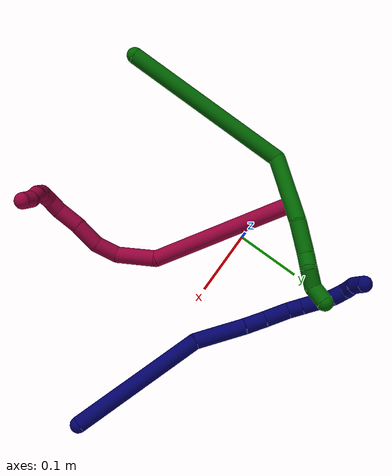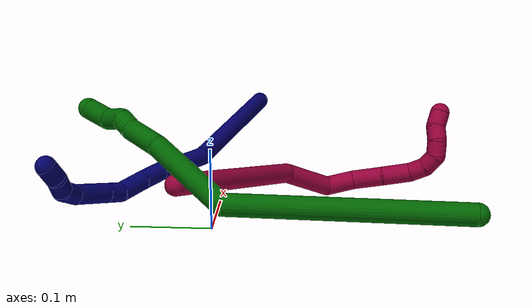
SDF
<sdf version="1.7">
 <world name="default">
  <model name="photoneo_s_sensor">
   <static>1</static>
   <pose>0 0 2 1.57079 1.57079 3.14159</pose>
   <link name="link">
    <inertial><mass>0.1</mass></inertial>
    <sensor name="sensor" type="depth">
     <update_rate>30</update_rate>
     <camera>
      <horizontal_fov>1.22</horizontal_fov>
      <image><width>1920</width><height>1200</height><format>B8G8R8</format></image>
      <clip><near>0.1</near><far>4</far></clip>
      <depth_camera><output>points</output></depth_camera>
     </camera>
     <plugin name="camera_plugin" filename="libgazebo_ros_depth_camera.so">
      <baseline>0.2</baseline>
      <alwaysOn>1</alwaysOn>
      <updateRate>0.0</updateRate>
      <cameraName>camera_ir</cameraName>
      <imageTopicName>/camera/color/image_raw</imageTopicName>
      <cameraInfoTopicName>/camera/color/camera_info</cameraInfoTopicName>
      <depthImageTopicName>/camera/depth/image_raw</depthImageTopicName>
      <depthImageCameraInfoTopicName>/camera/depth/camera_info</depthImageCameraInfoTopicName>
      <pointCloudTopicName>/camera/depth/points</pointCloudTopicName>
      <frameName>fr_optical</frameName>
      <pointCloudCutoff>0.1</pointCloudCutoff>
      <pointCloudCutoffMax>2.0</pointCloudCutoffMax>
      <distortionK1>0</distortionK1>
      <distortionK2>0</distortionK2>
      <distortionK3>0</distortionK3>
      <distortionT1>0</distortionT1>
      <distortionT2>0</distortionT2>
      <CxPrime>0</CxPrime>
      <Cx>0</Cx>
      <Cy>0</Cy>
      <focalLength>0</focalLength>
      <hackBaseline>0</hackBaseline>
     </plugin>
    </sensor>
   </link>
  </model>
  <model name="bin">
   <static>1</static>
   <link name="bottom">
    <collision name="collision-bottom">
     <pose>0 0 -0.01 0 -0 0</pose>
     <geometry><box><size>0.8 0.6 0.02</size></box></geometry>
     <surface>
      <friction><ode><mu>100</mu><mu2>100</mu2></ode></friction>
      <contact><collide_bitmask>65535</collide_bitmask></contact>
     </surface>
    </collision>
   </link>
   <link name="west_wall">
    <collision name="collision-west_wall">
     <pose>-0.41 0 0.1 0 -0 0</pose>
     <geometry><box><size>0.02 0.6 0.2</size></box></geometry>
     <surface>
      <friction><ode><mu>100</mu><mu2>100</mu2></ode></friction>
      <contact><collide_bitmask>65535</collide_bitmask></contact>
     </surface>
    </collision>
   </link>
   <link name="east_wall">
    <collision name="collision-east_wall">
     <pose>0.41 0 0.1 0 -0 0</pose>
     <geometry><box><size>0.02 0.6 0.2</size></box></geometry>
     <surface>
      <friction><ode><mu>100</mu><mu2>100</mu2></ode></friction>
      <contact><collide_bitmask>65535</collide_bitmask></contact>
     </surface>
    </collision>
   </link>
   <link name="south_wall">
    <collision name="collision-south_wall">
     <pose>0 -0.31 0.1 0 -0 0</pose>
     <geometry><box><size>0.8 0.02 0.2</size></box></geometry>
     <surface>
      <friction><ode><mu>100</mu><mu2>100</mu2></ode></friction>
      <contact><collide_bitmask>65535</collide_bitmask></contact>
     </surface>
    </collision>
   </link>
   <link name="north_wall">
    <collision name="collision-north_wall">
     <pose>0 0.31 0.1 0 -0 0</pose>
     <geometry><box><size>0.8 0.02 0.2</size></box></geometry>
     <surface>
      <friction><ode><mu>100</mu><mu2>100</mu2></ode></friction>
      <contact><collide_bitmask>65535</collide_bitmask></contact>
     </surface>
    </collision>
   </link>
  </model>
  <model name="6">
   <static>0</static>
   <link name="6">
    <collision name="collision-cylinder-e_1_1_4">
     <pose>-0.0597 0.064491 -0.097639 -2.55787 -0.471768 1.34951</pose>
     <geometry><cylinder><radius>0.0125</radius><length>0.262728</length></cylinder></geometry>
     <surface>
      <friction><ode><mu>1.16</mu><mu2>1.16</mu2><slip1>0</slip1><slip2>0</slip2></ode></friction>
      <contact><ode><kp>1e+06</kp><kd>1</kd><max_vel>0</max_vel><min_depth>0.001</min_depth></ode></contact>
     </surface>
    </collision>
    <visual name="visual-cylinder-e_1_1_4">
     <pose>-0.0597 0.064491 -0.097639 -2.55787 -0.471768 1.34951</pose>
     <geometry><cylinder><radius>0.0125</radius><length>0.262728</length></cylinder></geometry>
     <material><ambient>0 0.392157 0.003922 1</ambient></material>
    </visual>
    <collision name="collision-cylinder-e_2_4_5">
     <pose>-0.105793 0.168845 -0.230328 -2.29201 0.250935 -0.543875</pose>
     <geometry><cylinder><radius>0.0125</radius><length>0.109594</length></cylinder></geometry>
     <surface>
      <friction><ode><mu>1.16</mu><mu2>1.16</mu2><slip1>0</slip1><slip2>0</slip2></ode></friction>
      <contact><ode><kp>1e+06</kp><kd>1</kd><max_vel>0</max_vel><min_depth>0.001</min_depth></ode></contact>
     </surface>
    </collision>
    <visual name="visual-cylinder-e_2_4_5">
     <pose>-0.105793 0.168845 -0.230328 -2.29201 0.250935 -0.543875</pose>
     <geometry><cylinder><radius>0.0125</radius><length>0.109594</length></cylinder></geometry>
     <material><ambient>0 0.392157 0.003922 1</ambient></material>
    </visual>
    <collision name="collision-cylinder-e_3_5_6">
     <pose>-0.085436 0.222612 -0.284864 -2.52188 0.27488 -0.815567</pose>
     <geometry><cylinder><radius>0.0125</radius><length>0.049744</length></cylinder></geometry>
     <surface>
      <friction><ode><mu>1.16</mu><mu2>1.16</mu2><slip1>0</slip1><slip2>0</slip2></ode></friction>
      <contact><ode><kp>1e+06</kp><kd>1</kd><max_vel>0</max_vel><min_depth>0.001</min_depth></ode></contact>
     </surface>
    </collision>
    <visual name="visual-cylinder-e_3_5_6">
     <pose>-0.085436 0.222612 -0.284864 -2.52188 0.27488 -0.815567</pose>
     <geometry><cylinder><radius>0.0125</radius><length>0.049744</length></cylinder></geometry>
     <material><ambient>0 0.392157 0.003922 1</ambient></material>
    </visual>
    <collision name="collision-cylinder-e_4_6_7">
     <pose>-0.07495 0.243936 -0.310957 -2.29821 0.35957 -0.769862</pose>
     <geometry><cylinder><radius>0.0125</radius><length>0.021228</length></cylinder></geometry>
     <surface>
      <friction><ode><mu>1.16</mu><mu2>1.16</mu2><slip1>0</slip1><slip2>0</slip2></ode></friction>
      <contact><ode><kp>1e+06</kp><kd>1</kd><max_vel>0</max_vel><min_depth>0.001</min_depth></ode></contact>
     </surface>
    </collision>
    <visual name="visual-cylinder-e_4_6_7">
     <pose>-0.07495 0.243936 -0.310957 -2.29821 0.35957 -0.769862</pose>
     <geometry><cylinder><radius>0.0125</radius><length>0.021228</length></cylinder></geometry>
     <material><ambient>0 0.392157 0.003922 1</ambient></material>
    </visual>
    <collision name="collision-cylinder-e_5_7_8">
     <pose>-0.068762 0.254923 -0.331172 -2.88524 0.17262 -1.18249</pose>
     <geometry><cylinder><radius>0.0125</radius><length>0.028562</length></cylinder></geometry>
     <surface>
      <friction><ode><mu>1.16</mu><mu2>1.16</mu2><slip1>0</slip1><slip2>0</slip2></ode></friction>
      <contact><ode><kp>1e+06</kp><kd>1</kd><max_vel>0</max_vel><min_depth>0.001</min_depth></ode></contact>
     </surface>
    </collision>
    <visual name="visual-cylinder-e_5_7_8">
     <pose>-0.068762 0.254923 -0.331172 -2.88524 0.17262 -1.18249</pose>
     <geometry><cylinder><radius>0.0125</radius><length>0.028562</length></cylinder></geometry>
     <material><ambient>0 0.392157 0.003922 1</ambient></material>
    </visual>
    <collision name="collision-cylinder-e_6_8_2">
     <pose>-0.067512 0.269329 -0.353675 -2.25798 -0.085592 0.180579</pose>
     <geometry><cylinder><radius>0.0125</radius><length>0.028144</length></cylinder></geometry>
     <surface>
      <friction><ode><mu>1.16</mu><mu2>1.16</mu2><slip1>0</slip1><slip2>0</slip2></ode></friction>
      <contact><ode><kp>1e+06</kp><kd>1</kd><max_vel>0</max_vel><min_depth>0.001</min_depth></ode></contact>
     </surface>
    </collision>
    <visual name="visual-cylinder-e_6_8_2">
     <pose>-0.067512 0.269329 -0.353675 -2.25798 -0.085592 0.180579</pose>
     <geometry><cylinder><radius>0.0125</radius><length>0.028144</length></cylinder></geometry>
     <material><ambient>0 0.392157 0.003922 1</ambient></material>
    </visual>
    <collision name="collision-sphere-2">
     <pose>-0.068715 0.280167 -0.362569 0 -0 0</pose>
     <geometry><sphere><radius>0.0125</radius></sphere></geometry>
     <surface>
      <friction><ode><mu>1.16</mu><mu2>1.16</mu2><slip1>0</slip1><slip2>0</slip2></ode></friction>
      <contact><ode><kp>1e+06</kp><kd>1</kd><max_vel>0</max_vel><min_depth>0.001</min_depth></ode></contact>
     </surface>
    </collision>
    <visual name="visual-sphere-2">
     <pose>-0.068715 0.280167 -0.362569 0 -0 0</pose>
     <geometry><sphere><radius>0.0125</radius></sphere></geometry>
     <material><ambient>0 0.392157 0.003922 1</ambient></material>
    </visual>
    <collision name="collision-sphere-4">
     <pose>-0.1194 0.128981 -0.195279 0 -0 0</pose>
     <geometry><sphere><radius>0.0125</radius></sphere></geometry>
     <surface>
      <friction><ode><mu>1.16</mu><mu2>1.16</mu2><slip1>0</slip1><slip2>0</slip2></ode></friction>
      <contact><ode><kp>1e+06</kp><kd>1</kd><max_vel>0</max_vel><min_depth>0.001</min_depth></ode></contact>
     </surface>
    </collision>
    <visual name="visual-sphere-4">
     <pose>-0.1194 0.128981 -0.195279 0 -0 0</pose>
     <geometry><sphere><radius>0.0125</radius></sphere></geometry>
     <material><ambient>0 0.392157 0.003922 1</ambient></material>
    </visual>
    <collision name="collision-sphere-1">
     <geometry><sphere><radius>0.0125</radius></sphere></geometry>
     <surface>
      <friction><ode><mu>1.16</mu><mu2>1.16</mu2><slip1>0</slip1><slip2>0</slip2></ode></friction>
      <contact><ode><kp>1e+06</kp><kd>1</kd><max_vel>0</max_vel><min_depth>0.001</min_depth></ode></contact>
     </surface>
    </collision>
    <visual name="visual-sphere-1">
     <geometry><sphere><radius>0.0125</radius></sphere></geometry>
     <material><ambient>0 0.392157 0.003922 1</ambient></material>
    </visual>
    <collision name="collision-sphere-8">
     <pose>-0.066309 0.25849 -0.344781 0 -0 0</pose>
     <geometry><sphere><radius>0.0125</radius></sphere></geometry>
     <surface>
      <friction><ode><mu>1.16</mu><mu2>1.16</mu2><slip1>0</slip1><slip2>0</slip2></ode></friction>
      <contact><ode><kp>1e+06</kp><kd>1</kd><max_vel>0</max_vel><min_depth>0.001</min_depth></ode></contact>
     </surface>
    </collision>
    <visual name="visual-sphere-8">
     <pose>-0.066309 0.25849 -0.344781 0 -0 0</pose>
     <geometry><sphere><radius>0.0125</radius></sphere></geometry>
     <material><ambient>0 0.392157 0.003922 1</ambient></material>
    </visual>
    <collision name="collision-sphere-5">
     <pose>-0.092187 0.208709 -0.265377 0 -0 0</pose>
     <geometry><sphere><radius>0.0125</radius></sphere></geometry>
     <surface>
      <friction><ode><mu>1.16</mu><mu2>1.16</mu2><slip1>0</slip1><slip2>0</slip2></ode></friction>
      <contact><ode><kp>1e+06</kp><kd>1</kd><max_vel>0</max_vel><min_depth>0.001</min_depth></ode></contact>
     </surface>
    </collision>
    <visual name="visual-sphere-5">
     <pose>-0.092187 0.208709 -0.265377 0 -0 0</pose>
     <geometry><sphere><radius>0.0125</radius></sphere></geometry>
     <material><ambient>0 0.392157 0.003922 1</ambient></material>
    </visual>
    <collision name="collision-sphere-6">
     <pose>-0.078685 0.236515 -0.304351 0 -0 0</pose>
     <geometry><sphere><radius>0.0125</radius></sphere></geometry>
     <surface>
      <friction><ode><mu>1.16</mu><mu2>1.16</mu2><slip1>0</slip1><slip2>0</slip2></ode></friction>
      <contact><ode><kp>1e+06</kp><kd>1</kd><max_vel>0</max_vel><min_depth>0.001</min_depth></ode></contact>
     </surface>
    </collision>
    <visual name="visual-sphere-6">
     <pose>-0.078685 0.236515 -0.304351 0 -0 0</pose>
     <geometry><sphere><radius>0.0125</radius></sphere></geometry>
     <material><ambient>0 0.392157 0.003922 1</ambient></material>
    </visual>
    <collision name="collision-sphere-7">
     <pose>-0.071215 0.251356 -0.317563 0 -0 0</pose>
     <geometry><sphere><radius>0.0125</radius></sphere></geometry>
     <surface>
      <friction><ode><mu>1.16</mu><mu2>1.16</mu2><slip1>0</slip1><slip2>0</slip2></ode></friction>
      <contact><ode><kp>1e+06</kp><kd>1</kd><max_vel>0</max_vel><min_depth>0.001</min_depth></ode></contact>
     </surface>
    </collision>
    <visual name="visual-sphere-7">
     <pose>-0.071215 0.251356 -0.317563 0 -0 0</pose>
     <geometry><sphere><radius>0.0125</radius></sphere></geometry>
     <material><ambient>0 0.392157 0.003922 1</ambient></material>
    </visual>
    <inertial>
     <pose>-0.073968 0.133122 -0.182158 0 -0 0</pose>
     <mass>0.5</mass>
     <inertia>
      <ixx>0.001653</ixx>
      <ixy>0</ixy>
      <ixz>0</ixz>
      <iyy>0.001306</iyy>
      <iyz>0</iyz>
      <izz>-0.00021</izz>
     </inertia>
    </inertial>
   </link>
   <pose>-0.122059 -0.288355 0.072302 1.09955 -0.188151 -0.494706</pose>
  </model>
  <model name="7">
   <static>0</static>
   <link name="7">
    <collision name="collision-cylinder-e_1_1_4">
     <pose>-0.058438 -0.004374 -0.088133 3.09201 -0.58494 -2.97725</pose>
     <geometry><cylinder><radius>0.0125</radius><length>0.211675</length></cylinder></geometry>
     <surface>
      <friction><ode><mu>1.16</mu><mu2>1.16</mu2><slip1>0</slip1><slip2>0</slip2></ode></friction>
      <contact><ode><kp>1e+06</kp><kd>1</kd><max_vel>0</max_vel><min_depth>0.001</min_depth></ode></contact>
     </surface>
    </collision>
    <visual name="visual-cylinder-e_1_1_4">
     <pose>-0.058438 -0.004374 -0.088133 3.09201 -0.58494 -2.97725</pose>
     <geometry><cylinder><radius>0.0125</radius><length>0.211675</length></cylinder></geometry>
     <material><ambient>0.003922 0 0.403922 1</ambient></material>
    </visual>
    <collision name="collision-cylinder-e_2_4_5">
     <pose>-0.133554 0.002266 -0.210212 -2.82786 -0.437178 1.9041</pose>
     <geometry><cylinder><radius>0.0125</radius><length>0.078785</length></cylinder></geometry>
     <surface>
      <friction><ode><mu>1.16</mu><mu2>1.16</mu2><slip1>0</slip1><slip2>0</slip2></ode></friction>
      <contact><ode><kp>1e+06</kp><kd>1</kd><max_vel>0</max_vel><min_depth>0.001</min_depth></ode></contact>
     </surface>
    </collision>
    <visual name="visual-cylinder-e_2_4_5">
     <pose>-0.133554 0.002266 -0.210212 -2.82786 -0.437178 1.9041</pose>
     <geometry><cylinder><radius>0.0125</radius><length>0.078785</length></cylinder></geometry>
     <material><ambient>0.003922 0 0.403922 1</ambient></material>
    </visual>
    <collision name="collision-cylinder-e_3_5_6">
     <pose>-0.156795 0.016355 -0.258665 -2.93275 -0.416604 2.22097</pose>
     <geometry><cylinder><radius>0.0125</radius><length>0.032432</length></cylinder></geometry>
     <surface>
      <friction><ode><mu>1.16</mu><mu2>1.16</mu2><slip1>0</slip1><slip2>0</slip2></ode></friction>
      <contact><ode><kp>1e+06</kp><kd>1</kd><max_vel>0</max_vel><min_depth>0.001</min_depth></ode></contact>
     </surface>
    </collision>
    <visual name="visual-cylinder-e_3_5_6">
     <pose>-0.156795 0.016355 -0.258665 -2.93275 -0.416604 2.22097</pose>
     <geometry><cylinder><radius>0.0125</radius><length>0.032432</length></cylinder></geometry>
     <material><ambient>0.003922 0 0.403922 1</ambient></material>
    </visual>
    <collision name="collision-cylinder-e_4_6_7">
     <pose>-0.171326 0.022601 -0.290727 -2.96285 -0.420096 2.3458</pose>
     <geometry><cylinder><radius>0.0125</radius><length>0.039078</length></cylinder></geometry>
     <surface>
      <friction><ode><mu>1.16</mu><mu2>1.16</mu2><slip1>0</slip1><slip2>0</slip2></ode></friction>
      <contact><ode><kp>1e+06</kp><kd>1</kd><max_vel>0</max_vel><min_depth>0.001</min_depth></ode></contact>
     </surface>
    </collision>
    <visual name="visual-cylinder-e_4_6_7">
     <pose>-0.171326 0.022601 -0.290727 -2.96285 -0.420096 2.3458</pose>
     <geometry><cylinder><radius>0.0125</radius><length>0.039078</length></cylinder></geometry>
     <material><ambient>0.003922 0 0.403922 1</ambient></material>
    </visual>
    <collision name="collision-cylinder-e_5_7_8">
     <pose>-0.185656 0.030856 -0.316444 -2.58449 -0.584568 1.62161</pose>
     <geometry><cylinder><radius>0.0125</radius><length>0.023057</length></cylinder></geometry>
     <surface>
      <friction><ode><mu>1.16</mu><mu2>1.16</mu2><slip1>0</slip1><slip2>0</slip2></ode></friction>
      <contact><ode><kp>1e+06</kp><kd>1</kd><max_vel>0</max_vel><min_depth>0.001</min_depth></ode></contact>
     </surface>
    </collision>
    <visual name="visual-cylinder-e_5_7_8">
     <pose>-0.185656 0.030856 -0.316444 -2.58449 -0.584568 1.62161</pose>
     <geometry><cylinder><radius>0.0125</radius><length>0.023057</length></cylinder></geometry>
     <material><ambient>0.003922 0 0.403922 1</ambient></material>
    </visual>
    <collision name="collision-cylinder-e_6_8_9">
     <pose>-0.205193 0.046515 -0.341591 -2.58476 -0.582255 1.61793</pose>
     <geometry><cylinder><radius>0.0125</radius><length>0.047916</length></cylinder></geometry>
     <surface>
      <friction><ode><mu>1.16</mu><mu2>1.16</mu2><slip1>0</slip1><slip2>0</slip2></ode></friction>
      <contact><ode><kp>1e+06</kp><kd>1</kd><max_vel>0</max_vel><min_depth>0.001</min_depth></ode></contact>
     </surface>
    </collision>
    <visual name="visual-cylinder-e_6_8_9">
     <pose>-0.205193 0.046515 -0.341591 -2.58476 -0.582255 1.61793</pose>
     <geometry><cylinder><radius>0.0125</radius><length>0.047916</length></cylinder></geometry>
     <material><ambient>0.003922 0 0.403922 1</ambient></material>
    </visual>
    <collision name="collision-cylinder-e_7_9_10">
     <pose>-0.227523 0.062252 -0.364174 -2.39651 -0.877125 1.75228</pose>
     <geometry><cylinder><radius>0.0125</radius><length>0.023813</length></cylinder></geometry>
     <surface>
      <friction><ode><mu>1.16</mu><mu2>1.16</mu2><slip1>0</slip1><slip2>0</slip2></ode></friction>
      <contact><ode><kp>1e+06</kp><kd>1</kd><max_vel>0</max_vel><min_depth>0.001</min_depth></ode></contact>
     </surface>
    </collision>
    <visual name="visual-cylinder-e_7_9_10">
     <pose>-0.227523 0.062252 -0.364174 -2.39651 -0.877125 1.75228</pose>
     <geometry><cylinder><radius>0.0125</radius><length>0.023813</length></cylinder></geometry>
     <material><ambient>0.003922 0 0.403922 1</ambient></material>
    </visual>
    <collision name="collision-cylinder-e_8_10_11">
     <pose>-0.245288 0.07314 -0.368855 -1.41241 -0.978086 0.852196</pose>
     <geometry><cylinder><radius>0.0125</radius><length>0.020762</length></cylinder></geometry>
     <surface>
      <friction><ode><mu>1.16</mu><mu2>1.16</mu2><slip1>0</slip1><slip2>0</slip2></ode></friction>
      <contact><ode><kp>1e+06</kp><kd>1</kd><max_vel>0</max_vel><min_depth>0.001</min_depth></ode></contact>
     </surface>
    </collision>
    <visual name="visual-cylinder-e_8_10_11">
     <pose>-0.245288 0.07314 -0.368855 -1.41241 -0.978086 0.852196</pose>
     <geometry><cylinder><radius>0.0125</radius><length>0.020762</length></cylinder></geometry>
     <material><ambient>0.003922 0 0.403922 1</ambient></material>
    </visual>
    <collision name="collision-cylinder-e_9_11_2">
     <pose>-0.26088 0.087669 -0.368272 -1.60839 -0.670185 0.693887</pose>
     <geometry><cylinder><radius>0.0125</radius><length>0.022481</length></cylinder></geometry>
     <surface>
      <friction><ode><mu>1.16</mu><mu2>1.16</mu2><slip1>0</slip1><slip2>0</slip2></ode></friction>
      <contact><ode><kp>1e+06</kp><kd>1</kd><max_vel>0</max_vel><min_depth>0.001</min_depth></ode></contact>
     </surface>
    </collision>
    <visual name="visual-cylinder-e_9_11_2">
     <pose>-0.26088 0.087669 -0.368272 -1.60839 -0.670185 0.693887</pose>
     <geometry><cylinder><radius>0.0125</radius><length>0.022481</length></cylinder></geometry>
     <material><ambient>0.003922 0 0.403922 1</ambient></material>
    </visual>
    <collision name="collision-sphere-2">
     <pose>-0.267862 0.096472 -0.368603 0 -0 0</pose>
     <geometry><sphere><radius>0.0125</radius></sphere></geometry>
     <surface>
      <friction><ode><mu>1.16</mu><mu2>1.16</mu2><slip1>0</slip1><slip2>0</slip2></ode></friction>
      <contact><ode><kp>1e+06</kp><kd>1</kd><max_vel>0</max_vel><min_depth>0.001</min_depth></ode></contact>
     </surface>
    </collision>
    <visual name="visual-sphere-2">
     <pose>-0.267862 0.096472 -0.368603 0 -0 0</pose>
     <geometry><sphere><radius>0.0125</radius></sphere></geometry>
     <material><ambient>0.003922 0 0.403922 1</ambient></material>
    </visual>
    <collision name="collision-sphere-11">
     <pose>-0.253898 0.078866 -0.367941 0 -0 0</pose>
     <geometry><sphere><radius>0.0125</radius></sphere></geometry>
     <surface>
      <friction><ode><mu>1.16</mu><mu2>1.16</mu2><slip1>0</slip1><slip2>0</slip2></ode></friction>
      <contact><ode><kp>1e+06</kp><kd>1</kd><max_vel>0</max_vel><min_depth>0.001</min_depth></ode></contact>
     </surface>
    </collision>
    <visual name="visual-sphere-11">
     <pose>-0.253898 0.078866 -0.367941 0 -0 0</pose>
     <geometry><sphere><radius>0.0125</radius></sphere></geometry>
     <material><ambient>0.003922 0 0.403922 1</ambient></material>
    </visual>
    <collision name="collision-sphere-10">
     <pose>-0.236678 0.067413 -0.36977 0 -0 0</pose>
     <geometry><sphere><radius>0.0125</radius></sphere></geometry>
     <surface>
      <friction><ode><mu>1.16</mu><mu2>1.16</mu2><slip1>0</slip1><slip2>0</slip2></ode></friction>
      <contact><ode><kp>1e+06</kp><kd>1</kd><max_vel>0</max_vel><min_depth>0.001</min_depth></ode></contact>
     </surface>
    </collision>
    <visual name="visual-sphere-10">
     <pose>-0.236678 0.067413 -0.36977 0 -0 0</pose>
     <geometry><sphere><radius>0.0125</radius></sphere></geometry>
     <material><ambient>0.003922 0 0.403922 1</ambient></material>
    </visual>
    <collision name="collision-sphere-9">
     <pose>-0.218368 0.05709 -0.358579 0 -0 0</pose>
     <geometry><sphere><radius>0.0125</radius></sphere></geometry>
     <surface>
      <friction><ode><mu>1.16</mu><mu2>1.16</mu2><slip1>0</slip1><slip2>0</slip2></ode></friction>
      <contact><ode><kp>1e+06</kp><kd>1</kd><max_vel>0</max_vel><min_depth>0.001</min_depth></ode></contact>
     </surface>
    </collision>
    <visual name="visual-sphere-9">
     <pose>-0.218368 0.05709 -0.358579 0 -0 0</pose>
     <geometry><sphere><radius>0.0125</radius></sphere></geometry>
     <material><ambient>0.003922 0 0.403922 1</ambient></material>
    </visual>
    <collision name="collision-sphere-4">
     <pose>-0.116876 -0.008747 -0.176266 0 -0 0</pose>
     <geometry><sphere><radius>0.0125</radius></sphere></geometry>
     <surface>
      <friction><ode><mu>1.16</mu><mu2>1.16</mu2><slip1>0</slip1><slip2>0</slip2></ode></friction>
      <contact><ode><kp>1e+06</kp><kd>1</kd><max_vel>0</max_vel><min_depth>0.001</min_depth></ode></contact>
     </surface>
    </collision>
    <visual name="visual-sphere-4">
     <pose>-0.116876 -0.008747 -0.176266 0 -0 0</pose>
     <geometry><sphere><radius>0.0125</radius></sphere></geometry>
     <material><ambient>0.003922 0 0.403922 1</ambient></material>
    </visual>
    <collision name="collision-sphere-1">
     <geometry><sphere><radius>0.0125</radius></sphere></geometry>
     <surface>
      <friction><ode><mu>1.16</mu><mu2>1.16</mu2><slip1>0</slip1><slip2>0</slip2></ode></friction>
      <contact><ode><kp>1e+06</kp><kd>1</kd><max_vel>0</max_vel><min_depth>0.001</min_depth></ode></contact>
     </surface>
    </collision>
    <visual name="visual-sphere-1">
     <geometry><sphere><radius>0.0125</radius></sphere></geometry>
     <material><ambient>0.003922 0 0.403922 1</ambient></material>
    </visual>
    <collision name="collision-sphere-8">
     <pose>-0.192018 0.035939 -0.324604 0 -0 0</pose>
     <geometry><sphere><radius>0.0125</radius></sphere></geometry>
     <surface>
      <friction><ode><mu>1.16</mu><mu2>1.16</mu2><slip1>0</slip1><slip2>0</slip2></ode></friction>
      <contact><ode><kp>1e+06</kp><kd>1</kd><max_vel>0</max_vel><min_depth>0.001</min_depth></ode></contact>
     </surface>
    </collision>
    <visual name="visual-sphere-8">
     <pose>-0.192018 0.035939 -0.324604 0 -0 0</pose>
     <geometry><sphere><radius>0.0125</radius></sphere></geometry>
     <material><ambient>0.003922 0 0.403922 1</ambient></material>
    </visual>
    <collision name="collision-sphere-5">
     <pose>-0.150233 0.01328 -0.244158 0 -0 0</pose>
     <geometry><sphere><radius>0.0125</radius></sphere></geometry>
     <surface>
      <friction><ode><mu>1.16</mu><mu2>1.16</mu2><slip1>0</slip1><slip2>0</slip2></ode></friction>
      <contact><ode><kp>1e+06</kp><kd>1</kd><max_vel>0</max_vel><min_depth>0.001</min_depth></ode></contact>
     </surface>
    </collision>
    <visual name="visual-sphere-5">
     <pose>-0.150233 0.01328 -0.244158 0 -0 0</pose>
     <geometry><sphere><radius>0.0125</radius></sphere></geometry>
     <material><ambient>0.003922 0 0.403922 1</ambient></material>
    </visual>
    <collision name="collision-sphere-6">
     <pose>-0.163357 0.019429 -0.273171 0 -0 0</pose>
     <geometry><sphere><radius>0.0125</radius></sphere></geometry>
     <surface>
      <friction><ode><mu>1.16</mu><mu2>1.16</mu2><slip1>0</slip1><slip2>0</slip2></ode></friction>
      <contact><ode><kp>1e+06</kp><kd>1</kd><max_vel>0</max_vel><min_depth>0.001</min_depth></ode></contact>
     </surface>
    </collision>
    <visual name="visual-sphere-6">
     <pose>-0.163357 0.019429 -0.273171 0 -0 0</pose>
     <geometry><sphere><radius>0.0125</radius></sphere></geometry>
     <material><ambient>0.003922 0 0.403922 1</ambient></material>
    </visual>
    <collision name="collision-sphere-7">
     <pose>-0.179294 0.025773 -0.308283 0 -0 0</pose>
     <geometry><sphere><radius>0.0125</radius></sphere></geometry>
     <surface>
      <friction><ode><mu>1.16</mu><mu2>1.16</mu2><slip1>0</slip1><slip2>0</slip2></ode></friction>
      <contact><ode><kp>1e+06</kp><kd>1</kd><max_vel>0</max_vel><min_depth>0.001</min_depth></ode></contact>
     </surface>
    </collision>
    <visual name="visual-sphere-7">
     <pose>-0.179294 0.025773 -0.308283 0 -0 0</pose>
     <geometry><sphere><radius>0.0125</radius></sphere></geometry>
     <material><ambient>0.003922 0 0.403922 1</ambient></material>
    </visual>
    <inertial>
     <pose>-0.130321 0.017157 -0.206482 0 -0 0</pose>
     <mass>0.5</mass>
     <inertia>
      <ixx>-0.000747</ixx>
      <ixy>0</ixy>
      <ixz>0</ixz>
      <iyy>0.000781</iyy>
      <iyz>0</iyz>
      <izz>0.000456</izz>
     </inertia>
    </inertial>
   </link>
   <pose>0.369558 -0.03437 0.075225 0.902697 0.560413 0.357569</pose>
  </model>
  <model name="8">
   <static>0</static>
   <link name="8">
    <collision name="collision-cylinder-e_1_1_4">
     <pose>0.001418 -0.030607 0.104415 0.285144 0.013036 0.001871</pose>
     <geometry><cylinder><radius>0.0125</radius><length>0.217636</length></cylinder></geometry>
     <surface>
      <friction><ode><mu>1.16</mu><mu2>1.16</mu2><slip1>0</slip1><slip2>0</slip2></ode></friction>
      <contact><ode><kp>1e+06</kp><kd>1</kd><max_vel>0</max_vel><min_depth>0.001</min_depth></ode></contact>
     </surface>
    </collision>
    <visual name="visual-cylinder-e_1_1_4">
     <pose>0.001418 -0.030607 0.104415 0.285144 0.013036 0.001871</pose>
     <geometry><cylinder><radius>0.0125</radius><length>0.217636</length></cylinder></geometry>
     <material><ambient>0.584314 0 0.227451 1</ambient></material>
    </visual>
    <collision name="collision-cylinder-e_2_4_5">
     <pose>0.01902 -0.074037 0.235317 0.450844 0.502774 0.117652</pose>
     <geometry><cylinder><radius>0.0125</radius><length>0.067168</length></cylinder></geometry>
     <surface>
      <friction><ode><mu>1.16</mu><mu2>1.16</mu2><slip1>0</slip1><slip2>0</slip2></ode></friction>
      <contact><ode><kp>1e+06</kp><kd>1</kd><max_vel>0</max_vel><min_depth>0.001</min_depth></ode></contact>
     </surface>
    </collision>
    <visual name="visual-cylinder-e_2_4_5">
     <pose>0.01902 -0.074037 0.235317 0.450844 0.502774 0.117652</pose>
     <geometry><cylinder><radius>0.0125</radius><length>0.067168</length></cylinder></geometry>
     <material><ambient>0.584314 0 0.227451 1</ambient></material>
    </visual>
    <collision name="collision-cylinder-e_3_5_6">
     <pose>0.040394 -0.103183 0.268517 1.18071 0.286087 0.19242</pose>
     <geometry><cylinder><radius>0.0125</radius><length>0.036794</length></cylinder></geometry>
     <surface>
      <friction><ode><mu>1.16</mu><mu2>1.16</mu2><slip1>0</slip1><slip2>0</slip2></ode></friction>
      <contact><ode><kp>1e+06</kp><kd>1</kd><max_vel>0</max_vel><min_depth>0.001</min_depth></ode></contact>
     </surface>
    </collision>
    <visual name="visual-cylinder-e_3_5_6">
     <pose>0.040394 -0.103183 0.268517 1.18071 0.286087 0.19242</pose>
     <geometry><cylinder><radius>0.0125</radius><length>0.036794</length></cylinder></geometry>
     <material><ambient>0.584314 0 0.227451 1</ambient></material>
    </visual>
    <collision name="collision-cylinder-e_4_6_7">
     <pose>0.054297 -0.137599 0.276633 1.4933 0.447581 0.415161</pose>
     <geometry><cylinder><radius>0.0125</radius><length>0.040258</length></cylinder></geometry>
     <surface>
      <friction><ode><mu>1.16</mu><mu2>1.16</mu2><slip1>0</slip1><slip2>0</slip2></ode></friction>
      <contact><ode><kp>1e+06</kp><kd>1</kd><max_vel>0</max_vel><min_depth>0.001</min_depth></ode></contact>
     </surface>
    </collision>
    <visual name="visual-cylinder-e_4_6_7">
     <pose>0.054297 -0.137599 0.276633 1.4933 0.447581 0.415161</pose>
     <geometry><cylinder><radius>0.0125</radius><length>0.040258</length></cylinder></geometry>
     <material><ambient>0.584314 0 0.227451 1</ambient></material>
    </visual>
    <collision name="collision-cylinder-e_5_7_8">
     <pose>0.070397 -0.172035 0.281613 1.35543 0.415817 0.336385</pose>
     <geometry><cylinder><radius>0.0125</radius><length>0.036578</length></cylinder></geometry>
     <surface>
      <friction><ode><mu>1.16</mu><mu2>1.16</mu2><slip1>0</slip1><slip2>0</slip2></ode></friction>
      <contact><ode><kp>1e+06</kp><kd>1</kd><max_vel>0</max_vel><min_depth>0.001</min_depth></ode></contact>
     </surface>
    </collision>
    <visual name="visual-cylinder-e_5_7_8">
     <pose>0.070397 -0.172035 0.281613 1.35543 0.415817 0.336385</pose>
     <geometry><cylinder><radius>0.0125</radius><length>0.036578</length></cylinder></geometry>
     <material><ambient>0.584314 0 0.227451 1</ambient></material>
    </visual>
    <collision name="collision-cylinder-e_6_8_9">
     <pose>0.080375 -0.198691 0.284729 1.61535 0.245908 0.256995</pose>
     <geometry><cylinder><radius>0.0125</radius><length>0.021285</length></cylinder></geometry>
     <surface>
      <friction><ode><mu>1.16</mu><mu2>1.16</mu2><slip1>0</slip1><slip2>0</slip2></ode></friction>
      <contact><ode><kp>1e+06</kp><kd>1</kd><max_vel>0</max_vel><min_depth>0.001</min_depth></ode></contact>
     </surface>
    </collision>
    <visual name="visual-cylinder-e_6_8_9">
     <pose>0.080375 -0.198691 0.284729 1.61535 0.245908 0.256995</pose>
     <geometry><cylinder><radius>0.0125</radius><length>0.021285</length></cylinder></geometry>
     <material><ambient>0.584314 0 0.227451 1</ambient></material>
    </visual>
    <collision name="collision-cylinder-e_7_9_10">
     <pose>0.081228 -0.218758 0.282496 1.7506 -0.173477 -0.207625</pose>
     <geometry><cylinder><radius>0.0125</radius><length>0.020133</length></cylinder></geometry>
     <surface>
      <friction><ode><mu>1.16</mu><mu2>1.16</mu2><slip1>0</slip1><slip2>0</slip2></ode></friction>
      <contact><ode><kp>1e+06</kp><kd>1</kd><max_vel>0</max_vel><min_depth>0.001</min_depth></ode></contact>
     </surface>
    </collision>
    <visual name="visual-cylinder-e_7_9_10">
     <pose>0.081228 -0.218758 0.282496 1.7506 -0.173477 -0.207625</pose>
     <geometry><cylinder><radius>0.0125</radius><length>0.020133</length></cylinder></geometry>
     <material><ambient>0.584314 0 0.227451 1</ambient></material>
    </visual>
    <collision name="collision-cylinder-e_8_10_11">
     <pose>0.071777 -0.234818 0.279578 1.75048 -0.877623 -1.02441</pose>
     <geometry><cylinder><radius>0.0125</radius><length>0.020056</length></cylinder></geometry>
     <surface>
      <friction><ode><mu>1.16</mu><mu2>1.16</mu2><slip1>0</slip1><slip2>0</slip2></ode></friction>
      <contact><ode><kp>1e+06</kp><kd>1</kd><max_vel>0</max_vel><min_depth>0.001</min_depth></ode></contact>
     </surface>
    </collision>
    <visual name="visual-cylinder-e_8_10_11">
     <pose>0.071777 -0.234818 0.279578 1.75048 -0.877623 -1.02441</pose>
     <geometry><cylinder><radius>0.0125</radius><length>0.020056</length></cylinder></geometry>
     <material><ambient>0.584314 0 0.227451 1</ambient></material>
    </visual>
    <collision name="collision-cylinder-e_9_11_12">
     <pose>0.055199 -0.245552 0.279809 1.26943 -1.08872 -0.838668</pose>
     <geometry><cylinder><radius>0.0125</radius><length>0.020009</length></cylinder></geometry>
     <surface>
      <friction><ode><mu>1.16</mu><mu2>1.16</mu2><slip1>0</slip1><slip2>0</slip2></ode></friction>
      <contact><ode><kp>1e+06</kp><kd>1</kd><max_vel>0</max_vel><min_depth>0.001</min_depth></ode></contact>
     </surface>
    </collision>
    <visual name="visual-cylinder-e_9_11_12">
     <pose>0.055199 -0.245552 0.279809 1.26943 -1.08872 -0.838668</pose>
     <geometry><cylinder><radius>0.0125</radius><length>0.020009</length></cylinder></geometry>
     <material><ambient>0.584314 0 0.227451 1</ambient></material>
    </visual>
    <collision name="collision-cylinder-e_10_12_2">
     <pose>0.03964 -0.257226 0.283066 1.31692 -0.72975 -0.574674</pose>
     <geometry><cylinder><radius>0.0125</radius><length>0.020083</length></cylinder></geometry>
     <surface>
      <friction><ode><mu>1.16</mu><mu2>1.16</mu2><slip1>0</slip1><slip2>0</slip2></ode></friction>
      <contact><ode><kp>1e+06</kp><kd>1</kd><max_vel>0</max_vel><min_depth>0.001</min_depth></ode></contact>
     </surface>
    </collision>
    <visual name="visual-cylinder-e_10_12_2">
     <pose>0.03964 -0.257226 0.283066 1.31692 -0.72975 -0.574674</pose>
     <geometry><cylinder><radius>0.0125</radius><length>0.020083</length></cylinder></geometry>
     <material><ambient>0.584314 0 0.227451 1</ambient></material>
    </visual>
    <collision name="collision-sphere-2">
     <pose>0.032945 -0.26447 0.284946 0 -0 0</pose>
     <geometry><sphere><radius>0.0125</radius></sphere></geometry>
     <surface>
      <friction><ode><mu>1.16</mu><mu2>1.16</mu2><slip1>0</slip1><slip2>0</slip2></ode></friction>
      <contact><ode><kp>1e+06</kp><kd>1</kd><max_vel>0</max_vel><min_depth>0.001</min_depth></ode></contact>
     </surface>
    </collision>
    <visual name="visual-sphere-2">
     <pose>0.032945 -0.26447 0.284946 0 -0 0</pose>
     <geometry><sphere><radius>0.0125</radius></sphere></geometry>
     <material><ambient>0.584314 0 0.227451 1</ambient></material>
    </visual>
    <collision name="collision-sphere-12">
     <pose>0.046334 -0.249981 0.281186 0 -0 0</pose>
     <geometry><sphere><radius>0.0125</radius></sphere></geometry>
     <surface>
      <friction><ode><mu>1.16</mu><mu2>1.16</mu2><slip1>0</slip1><slip2>0</slip2></ode></friction>
      <contact><ode><kp>1e+06</kp><kd>1</kd><max_vel>0</max_vel><min_depth>0.001</min_depth></ode></contact>
     </surface>
    </collision>
    <visual name="visual-sphere-12">
     <pose>0.046334 -0.249981 0.281186 0 -0 0</pose>
     <geometry><sphere><radius>0.0125</radius></sphere></geometry>
     <material><ambient>0.584314 0 0.227451 1</ambient></material>
    </visual>
    <collision name="collision-sphere-11">
     <pose>0.064063 -0.241122 0.278433 0 -0 0</pose>
     <geometry><sphere><radius>0.0125</radius></sphere></geometry>
     <surface>
      <friction><ode><mu>1.16</mu><mu2>1.16</mu2><slip1>0</slip1><slip2>0</slip2></ode></friction>
      <contact><ode><kp>1e+06</kp><kd>1</kd><max_vel>0</max_vel><min_depth>0.001</min_depth></ode></contact>
     </surface>
    </collision>
    <visual name="visual-sphere-11">
     <pose>0.064063 -0.241122 0.278433 0 -0 0</pose>
     <geometry><sphere><radius>0.0125</radius></sphere></geometry>
     <material><ambient>0.584314 0 0.227451 1</ambient></material>
    </visual>
    <collision name="collision-sphere-10">
     <pose>0.079491 -0.228513 0.280723 0 -0 0</pose>
     <geometry><sphere><radius>0.0125</radius></sphere></geometry>
     <surface>
      <friction><ode><mu>1.16</mu><mu2>1.16</mu2><slip1>0</slip1><slip2>0</slip2></ode></friction>
      <contact><ode><kp>1e+06</kp><kd>1</kd><max_vel>0</max_vel><min_depth>0.001</min_depth></ode></contact>
     </surface>
    </collision>
    <visual name="visual-sphere-10">
     <pose>0.079491 -0.228513 0.280723 0 -0 0</pose>
     <geometry><sphere><radius>0.0125</radius></sphere></geometry>
     <material><ambient>0.584314 0 0.227451 1</ambient></material>
    </visual>
    <collision name="collision-sphere-9">
     <pose>0.082966 -0.209003 0.284269 0 -0 0</pose>
     <geometry><sphere><radius>0.0125</radius></sphere></geometry>
     <surface>
      <friction><ode><mu>1.16</mu><mu2>1.16</mu2><slip1>0</slip1><slip2>0</slip2></ode></friction>
      <contact><ode><kp>1e+06</kp><kd>1</kd><max_vel>0</max_vel><min_depth>0.001</min_depth></ode></contact>
     </surface>
    </collision>
    <visual name="visual-sphere-9">
     <pose>0.082966 -0.209003 0.284269 0 -0 0</pose>
     <geometry><sphere><radius>0.0125</radius></sphere></geometry>
     <material><ambient>0.584314 0 0.227451 1</ambient></material>
    </visual>
    <collision name="collision-sphere-4">
     <pose>0.002837 -0.061215 0.20883 0 -0 0</pose>
     <geometry><sphere><radius>0.0125</radius></sphere></geometry>
     <surface>
      <friction><ode><mu>1.16</mu><mu2>1.16</mu2><slip1>0</slip1><slip2>0</slip2></ode></friction>
      <contact><ode><kp>1e+06</kp><kd>1</kd><max_vel>0</max_vel><min_depth>0.001</min_depth></ode></contact>
     </surface>
    </collision>
    <visual name="visual-sphere-4">
     <pose>0.002837 -0.061215 0.20883 0 -0 0</pose>
     <geometry><sphere><radius>0.0125</radius></sphere></geometry>
     <material><ambient>0.584314 0 0.227451 1</ambient></material>
    </visual>
    <collision name="collision-sphere-1">
     <geometry><sphere><radius>0.0125</radius></sphere></geometry>
     <surface>
      <friction><ode><mu>1.16</mu><mu2>1.16</mu2><slip1>0</slip1><slip2>0</slip2></ode></friction>
      <contact><ode><kp>1e+06</kp><kd>1</kd><max_vel>0</max_vel><min_depth>0.001</min_depth></ode></contact>
     </surface>
    </collision>
    <visual name="visual-sphere-1">
     <geometry><sphere><radius>0.0125</radius></sphere></geometry>
     <material><ambient>0.584314 0 0.227451 1</ambient></material>
    </visual>
    <collision name="collision-sphere-8">
     <pose>0.077784 -0.188379 0.285189 0 -0 0</pose>
     <geometry><sphere><radius>0.0125</radius></sphere></geometry>
     <surface>
      <friction><ode><mu>1.16</mu><mu2>1.16</mu2><slip1>0</slip1><slip2>0</slip2></ode></friction>
      <contact><ode><kp>1e+06</kp><kd>1</kd><max_vel>0</max_vel><min_depth>0.001</min_depth></ode></contact>
     </surface>
    </collision>
    <visual name="visual-sphere-8">
     <pose>0.077784 -0.188379 0.285189 0 -0 0</pose>
     <geometry><sphere><radius>0.0125</radius></sphere></geometry>
     <material><ambient>0.584314 0 0.227451 1</ambient></material>
    </visual>
    <collision name="collision-sphere-5">
     <pose>0.035202 -0.08686 0.261805 0 -0 0</pose>
     <geometry><sphere><radius>0.0125</radius></sphere></geometry>
     <surface>
      <friction><ode><mu>1.16</mu><mu2>1.16</mu2><slip1>0</slip1><slip2>0</slip2></ode></friction>
      <contact><ode><kp>1e+06</kp><kd>1</kd><max_vel>0</max_vel><min_depth>0.001</min_depth></ode></contact>
     </surface>
    </collision>
    <visual name="visual-sphere-5">
     <pose>0.035202 -0.08686 0.261805 0 -0 0</pose>
     <geometry><sphere><radius>0.0125</radius></sphere></geometry>
     <material><ambient>0.584314 0 0.227451 1</ambient></material>
    </visual>
    <collision name="collision-sphere-6">
     <pose>0.045586 -0.119507 0.275228 0 -0 0</pose>
     <geometry><sphere><radius>0.0125</radius></sphere></geometry>
     <surface>
      <friction><ode><mu>1.16</mu><mu2>1.16</mu2><slip1>0</slip1><slip2>0</slip2></ode></friction>
      <contact><ode><kp>1e+06</kp><kd>1</kd><max_vel>0</max_vel><min_depth>0.001</min_depth></ode></contact>
     </surface>
    </collision>
    <visual name="visual-sphere-6">
     <pose>0.045586 -0.119507 0.275228 0 -0 0</pose>
     <geometry><sphere><radius>0.0125</radius></sphere></geometry>
     <material><ambient>0.584314 0 0.227451 1</ambient></material>
    </visual>
    <collision name="collision-sphere-7">
     <pose>0.063009 -0.155691 0.278038 0 -0 0</pose>
     <geometry><sphere><radius>0.0125</radius></sphere></geometry>
     <surface>
      <friction><ode><mu>1.16</mu><mu2>1.16</mu2><slip1>0</slip1><slip2>0</slip2></ode></friction>
      <contact><ode><kp>1e+06</kp><kd>1</kd><max_vel>0</max_vel><min_depth>0.001</min_depth></ode></contact>
     </surface>
    </collision>
    <visual name="visual-sphere-7">
     <pose>0.063009 -0.155691 0.278038 0 -0 0</pose>
     <geometry><sphere><radius>0.0125</radius></sphere></geometry>
     <material><ambient>0.584314 0 0.227451 1</ambient></material>
    </visual>
    <inertial>
     <pose>0.029039 -0.10137 0.196973 0 -0 0</pose>
     <mass>0.5</mass>
     <inertia>
      <ixx>0.000923</ixx>
      <ixy>0</ixy>
      <ixz>0</ixz>
      <iyy>0.000854</iyy>
      <iyz>0</iyz>
      <izz>0.00027</izz>
     </inertia>
    </inertial>
   </link>
   <pose>-0.073961 0.029608 0.0806 -2.11723 0.78231 -2.32193</pose>
  </model>
 </world>
</sdf>
